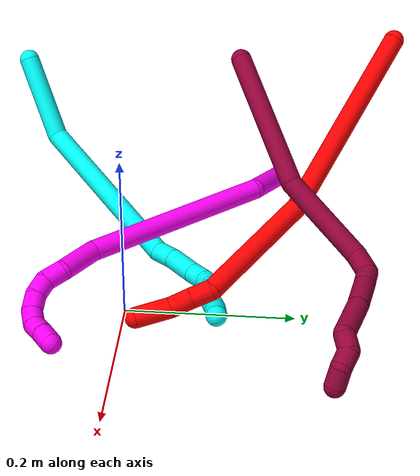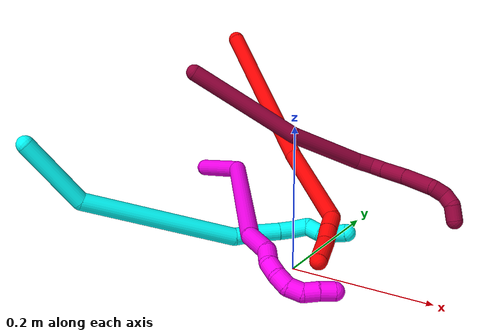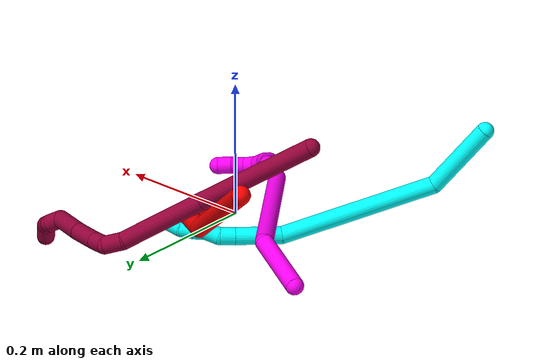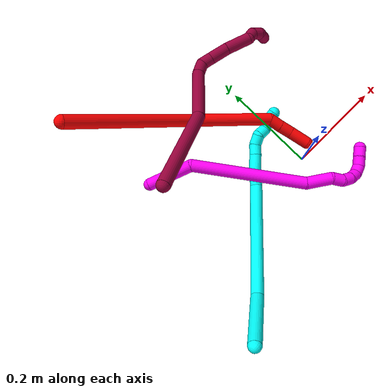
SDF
<sdf version="1.7">
 <world name="default">
  <model name="2">
   <static>0</static>
   <link name="2">
    <collision name="collision-cylinder-e_1_1_4">
     <pose>0.005366 -0.071819 -0.102553 2.53066 0.042832 0.135643</pose>
     <geometry><cylinder><radius>0.0125</radius><length>0.250631</length></cylinder></geometry>
     <surface>
      <friction><ode><mu>1.16</mu><mu2>1.16</mu2><slip1>0</slip1><slip2>0</slip2></ode></friction>
      <contact><ode><kp>1e+06</kp><kd>1</kd><max_vel>0</max_vel><min_depth>0.001</min_depth></ode></contact>
     </surface>
    </collision>
    <visual name="visual-cylinder-e_1_1_4">
     <pose>0.005366 -0.071819 -0.102553 2.53066 0.042832 0.135643</pose>
     <geometry><cylinder><radius>0.0125</radius><length>0.250631</length></cylinder></geometry>
     <material><ambient>1 0 0 1</ambient></material>
    </visual>
    <collision name="collision-cylinder-e_2_4_5">
     <pose>0.008949 -0.165995 -0.279182 2.84848 -0.023033 -0.155726</pose>
     <geometry><cylinder><radius>0.0125</radius><length>0.154792</length></cylinder></geometry>
     <surface>
      <friction><ode><mu>1.16</mu><mu2>1.16</mu2><slip1>0</slip1><slip2>0</slip2></ode></friction>
      <contact><ode><kp>1e+06</kp><kd>1</kd><max_vel>0</max_vel><min_depth>0.001</min_depth></ode></contact>
     </surface>
    </collision>
    <visual name="visual-cylinder-e_2_4_5">
     <pose>0.008949 -0.165995 -0.279182 2.84848 -0.023033 -0.155726</pose>
     <geometry><cylinder><radius>0.0125</radius><length>0.154792</length></cylinder></geometry>
     <material><ambient>1 0 0 1</ambient></material>
    </visual>
    <collision name="collision-cylinder-e_3_5_6">
     <pose>0.013792 -0.189385 -0.364147 3.04694 0.54458 2.80555</pose>
     <geometry><cylinder><radius>0.0125</radius><length>0.025577</length></cylinder></geometry>
     <surface>
      <friction><ode><mu>1.16</mu><mu2>1.16</mu2><slip1>0</slip1><slip2>0</slip2></ode></friction>
      <contact><ode><kp>1e+06</kp><kd>1</kd><max_vel>0</max_vel><min_depth>0.001</min_depth></ode></contact>
     </surface>
    </collision>
    <visual name="visual-cylinder-e_3_5_6">
     <pose>0.013792 -0.189385 -0.364147 3.04694 0.54458 2.80555</pose>
     <geometry><cylinder><radius>0.0125</radius><length>0.025577</length></cylinder></geometry>
     <material><ambient>1 0 0 1</ambient></material>
    </visual>
    <collision name="collision-cylinder-e_4_6_7">
     <pose>0.026655 -0.191814 -0.386681 3.02241 0.488835 2.67197</pose>
     <geometry><cylinder><radius>0.0125</radius><length>0.026566</length></cylinder></geometry>
     <surface>
      <friction><ode><mu>1.16</mu><mu2>1.16</mu2><slip1>0</slip1><slip2>0</slip2></ode></friction>
      <contact><ode><kp>1e+06</kp><kd>1</kd><max_vel>0</max_vel><min_depth>0.001</min_depth></ode></contact>
     </surface>
    </collision>
    <visual name="visual-cylinder-e_4_6_7">
     <pose>0.026655 -0.191814 -0.386681 3.02241 0.488835 2.67197</pose>
     <geometry><cylinder><radius>0.0125</radius><length>0.026566</length></cylinder></geometry>
     <material><ambient>1 0 0 1</ambient></material>
    </visual>
    <collision name="collision-cylinder-e_5_7_2">
     <pose>0.042968 -0.192226 -0.416971 -3.08896 0.494849 -2.93394</pose>
     <geometry><cylinder><radius>0.0125</radius><length>0.042433</length></cylinder></geometry>
     <surface>
      <friction><ode><mu>1.16</mu><mu2>1.16</mu2><slip1>0</slip1><slip2>0</slip2></ode></friction>
      <contact><ode><kp>1e+06</kp><kd>1</kd><max_vel>0</max_vel><min_depth>0.001</min_depth></ode></contact>
     </surface>
    </collision>
    <visual name="visual-cylinder-e_5_7_2">
     <pose>0.042968 -0.192226 -0.416971 -3.08896 0.494849 -2.93394</pose>
     <geometry><cylinder><radius>0.0125</radius><length>0.042433</length></cylinder></geometry>
     <material><ambient>1 0 0 1</ambient></material>
    </visual>
    <collision name="collision-sphere-2">
     <pose>0.053044 -0.191243 -0.435617 0 -0 0</pose>
     <geometry><sphere><radius>0.0125</radius></sphere></geometry>
     <surface>
      <friction><ode><mu>1.16</mu><mu2>1.16</mu2><slip1>0</slip1><slip2>0</slip2></ode></friction>
      <contact><ode><kp>1e+06</kp><kd>1</kd><max_vel>0</max_vel><min_depth>0.001</min_depth></ode></contact>
     </surface>
    </collision>
    <visual name="visual-sphere-2">
     <pose>0.053044 -0.191243 -0.435617 0 -0 0</pose>
     <geometry><sphere><radius>0.0125</radius></sphere></geometry>
     <material><ambient>1 0 0 1</ambient></material>
    </visual>
    <collision name="collision-sphere-7">
     <pose>0.032893 -0.193208 -0.398325 0 -0 0</pose>
     <geometry><sphere><radius>0.0125</radius></sphere></geometry>
     <surface>
      <friction><ode><mu>1.16</mu><mu2>1.16</mu2><slip1>0</slip1><slip2>0</slip2></ode></friction>
      <contact><ode><kp>1e+06</kp><kd>1</kd><max_vel>0</max_vel><min_depth>0.001</min_depth></ode></contact>
     </surface>
    </collision>
    <visual name="visual-sphere-7">
     <pose>0.032893 -0.193208 -0.398325 0 -0 0</pose>
     <geometry><sphere><radius>0.0125</radius></sphere></geometry>
     <material><ambient>1 0 0 1</ambient></material>
    </visual>
    <collision name="collision-sphere-6">
     <pose>0.020417 -0.190419 -0.375037 0 -0 0</pose>
     <geometry><sphere><radius>0.0125</radius></sphere></geometry>
     <surface>
      <friction><ode><mu>1.16</mu><mu2>1.16</mu2><slip1>0</slip1><slip2>0</slip2></ode></friction>
      <contact><ode><kp>1e+06</kp><kd>1</kd><max_vel>0</max_vel><min_depth>0.001</min_depth></ode></contact>
     </surface>
    </collision>
    <visual name="visual-sphere-6">
     <pose>0.020417 -0.190419 -0.375037 0 -0 0</pose>
     <geometry><sphere><radius>0.0125</radius></sphere></geometry>
     <material><ambient>1 0 0 1</ambient></material>
    </visual>
    <collision name="collision-sphere-5">
     <pose>0.007167 -0.188351 -0.353258 0 -0 0</pose>
     <geometry><sphere><radius>0.0125</radius></sphere></geometry>
     <surface>
      <friction><ode><mu>1.16</mu><mu2>1.16</mu2><slip1>0</slip1><slip2>0</slip2></ode></friction>
      <contact><ode><kp>1e+06</kp><kd>1</kd><max_vel>0</max_vel><min_depth>0.001</min_depth></ode></contact>
     </surface>
    </collision>
    <visual name="visual-sphere-5">
     <pose>0.007167 -0.188351 -0.353258 0 -0 0</pose>
     <geometry><sphere><radius>0.0125</radius></sphere></geometry>
     <material><ambient>1 0 0 1</ambient></material>
    </visual>
    <collision name="collision-sphere-1">
     <geometry><sphere><radius>0.0125</radius></sphere></geometry>
     <surface>
      <friction><ode><mu>1.16</mu><mu2>1.16</mu2><slip1>0</slip1><slip2>0</slip2></ode></friction>
      <contact><ode><kp>1e+06</kp><kd>1</kd><max_vel>0</max_vel><min_depth>0.001</min_depth></ode></contact>
     </surface>
    </collision>
    <visual name="visual-sphere-1">
     <geometry><sphere><radius>0.0125</radius></sphere></geometry>
     <material><ambient>1 0 0 1</ambient></material>
    </visual>
    <collision name="collision-sphere-4">
     <pose>0.010732 -0.143639 -0.205107 0 -0 0</pose>
     <geometry><sphere><radius>0.0125</radius></sphere></geometry>
     <surface>
      <friction><ode><mu>1.16</mu><mu2>1.16</mu2><slip1>0</slip1><slip2>0</slip2></ode></friction>
      <contact><ode><kp>1e+06</kp><kd>1</kd><max_vel>0</max_vel><min_depth>0.001</min_depth></ode></contact>
     </surface>
    </collision>
    <visual name="visual-sphere-4">
     <pose>0.010732 -0.143639 -0.205107 0 -0 0</pose>
     <geometry><sphere><radius>0.0125</radius></sphere></geometry>
     <material><ambient>1 0 0 1</ambient></material>
    </visual>
    <inertial>
     <pose>0.011229 -0.123583 -0.212396 0 -0 0</pose>
     <mass>0.5</mass>
     <inertia>
      <ixx>0.001743</ixx>
      <ixy>0</ixy>
      <ixz>0</ixz>
      <iyy>-0.001238</iyy>
      <iyz>0</iyz>
      <izz>0.000759</izz>
     </inertia>
    </inertial>
   </link>
   <pose>-0.283828 0.306736 0.227749 1.51742 0.461636 -2.42924</pose>
  </model>
  <model name="3">
   <static>0</static>
   <link name="3">
    <collision name="collision-cylinder-e_1_1_4">
     <pose>-0.016503 0.016535 -0.048073 -2.81031 -0.313898 1.51597</pose>
     <geometry><cylinder><radius>0.0125</radius><length>0.106898</length></cylinder></geometry>
     <surface>
      <friction><ode><mu>1.16</mu><mu2>1.16</mu2><slip1>0</slip1><slip2>0</slip2></ode></friction>
      <contact><ode><kp>1e+06</kp><kd>1</kd><max_vel>0</max_vel><min_depth>0.001</min_depth></ode></contact>
     </surface>
    </collision>
    <visual name="visual-cylinder-e_1_1_4">
     <pose>-0.016503 0.016535 -0.048073 -2.81031 -0.313898 1.51597</pose>
     <geometry><cylinder><radius>0.0125</radius><length>0.106898</length></cylinder></geometry>
     <material><ambient>0.003922 1 0.996078 1</ambient></material>
    </visual>
    <collision name="collision-cylinder-e_2_4_5">
     <pose>-0.013756 0.097436 -0.185815 -2.51902 0.17267 -0.525558</pose>
     <geometry><cylinder><radius>0.0125</radius><length>0.22409</length></cylinder></geometry>
     <surface>
      <friction><ode><mu>1.16</mu><mu2>1.16</mu2><slip1>0</slip1><slip2>0</slip2></ode></friction>
      <contact><ode><kp>1e+06</kp><kd>1</kd><max_vel>0</max_vel><min_depth>0.001</min_depth></ode></contact>
     </surface>
    </collision>
    <visual name="visual-cylinder-e_2_4_5">
     <pose>-0.013756 0.097436 -0.185815 -2.51902 0.17267 -0.525558</pose>
     <geometry><cylinder><radius>0.0125</radius><length>0.22409</length></cylinder></geometry>
     <material><ambient>0.003922 1 0.996078 1</ambient></material>
    </visual>
    <collision name="collision-cylinder-e_3_5_6">
     <pose>0.011627 0.17106 -0.282894 -2.24568 0.477213 -0.937163</pose>
     <geometry><cylinder><radius>0.0125</radius><length>0.026702</length></cylinder></geometry>
     <surface>
      <friction><ode><mu>1.16</mu><mu2>1.16</mu2><slip1>0</slip1><slip2>0</slip2></ode></friction>
      <contact><ode><kp>1e+06</kp><kd>1</kd><max_vel>0</max_vel><min_depth>0.001</min_depth></ode></contact>
     </surface>
    </collision>
    <visual name="visual-cylinder-e_3_5_6">
     <pose>0.011627 0.17106 -0.282894 -2.24568 0.477213 -0.937163</pose>
     <geometry><cylinder><radius>0.0125</radius><length>0.026702</length></cylinder></geometry>
     <material><ambient>0.003922 1 0.996078 1</ambient></material>
    </visual>
    <collision name="collision-cylinder-e_4_6_7">
     <pose>0.026614 0.19211 -0.302884 -2.38857 0.47444 -1.09768</pose>
     <geometry><cylinder><radius>0.0125</radius><length>0.038765</length></cylinder></geometry>
     <surface>
      <friction><ode><mu>1.16</mu><mu2>1.16</mu2><slip1>0</slip1><slip2>0</slip2></ode></friction>
      <contact><ode><kp>1e+06</kp><kd>1</kd><max_vel>0</max_vel><min_depth>0.001</min_depth></ode></contact>
     </surface>
    </collision>
    <visual name="visual-cylinder-e_4_6_7">
     <pose>0.026614 0.19211 -0.302884 -2.38857 0.47444 -1.09768</pose>
     <geometry><cylinder><radius>0.0125</radius><length>0.038765</length></cylinder></geometry>
     <material><ambient>0.003922 1 0.996078 1</ambient></material>
    </visual>
    <collision name="collision-cylinder-e_5_7_8">
     <pose>0.040617 0.21088 -0.322135 -2.33364 0.48992 -1.05829</pose>
     <geometry><cylinder><radius>0.0125</radius><length>0.021883</length></cylinder></geometry>
     <surface>
      <friction><ode><mu>1.16</mu><mu2>1.16</mu2><slip1>0</slip1><slip2>0</slip2></ode></friction>
      <contact><ode><kp>1e+06</kp><kd>1</kd><max_vel>0</max_vel><min_depth>0.001</min_depth></ode></contact>
     </surface>
    </collision>
    <visual name="visual-cylinder-e_5_7_8">
     <pose>0.040617 0.21088 -0.322135 -2.33364 0.48992 -1.05829</pose>
     <geometry><cylinder><radius>0.0125</radius><length>0.021883</length></cylinder></geometry>
     <material><ambient>0.003922 1 0.996078 1</ambient></material>
    </visual>
    <collision name="collision-cylinder-e_6_8_9">
     <pose>0.053761 0.221195 -0.334929 -2.64269 0.853522 -2.12022</pose>
     <geometry><cylinder><radius>0.0125</radius><length>0.021218</length></cylinder></geometry>
     <surface>
      <friction><ode><mu>1.16</mu><mu2>1.16</mu2><slip1>0</slip1><slip2>0</slip2></ode></friction>
      <contact><ode><kp>1e+06</kp><kd>1</kd><max_vel>0</max_vel><min_depth>0.001</min_depth></ode></contact>
     </surface>
    </collision>
    <visual name="visual-cylinder-e_6_8_9">
     <pose>0.053761 0.221195 -0.334929 -2.64269 0.853522 -2.12022</pose>
     <geometry><cylinder><radius>0.0125</radius><length>0.021218</length></cylinder></geometry>
     <material><ambient>0.003922 1 0.996078 1</ambient></material>
    </visual>
    <collision name="collision-cylinder-e_7_9_10">
     <pose>0.065332 0.223657 -0.350395 3.04822 0.364109 2.64451</pose>
     <geometry><cylinder><radius>0.0125</radius><length>0.020083</length></cylinder></geometry>
     <surface>
      <friction><ode><mu>1.16</mu><mu2>1.16</mu2><slip1>0</slip1><slip2>0</slip2></ode></friction>
      <contact><ode><kp>1e+06</kp><kd>1</kd><max_vel>0</max_vel><min_depth>0.001</min_depth></ode></contact>
     </surface>
    </collision>
    <visual name="visual-cylinder-e_7_9_10">
     <pose>0.065332 0.223657 -0.350395 3.04822 0.364109 2.64451</pose>
     <geometry><cylinder><radius>0.0125</radius><length>0.020083</length></cylinder></geometry>
     <material><ambient>0.003922 1 0.996078 1</ambient></material>
    </visual>
    <collision name="collision-cylinder-e_8_10_11">
     <pose>0.074689 0.225753 -0.367571 -2.7791 0.604039 -2.07817</pose>
     <geometry><cylinder><radius>0.0125</radius><length>0.020358</length></cylinder></geometry>
     <surface>
      <friction><ode><mu>1.16</mu><mu2>1.16</mu2><slip1>0</slip1><slip2>0</slip2></ode></friction>
      <contact><ode><kp>1e+06</kp><kd>1</kd><max_vel>0</max_vel><min_depth>0.001</min_depth></ode></contact>
     </surface>
    </collision>
    <visual name="visual-cylinder-e_8_10_11">
     <pose>0.074689 0.225753 -0.367571 -2.7791 0.604039 -2.07817</pose>
     <geometry><cylinder><radius>0.0125</radius><length>0.020358</length></cylinder></geometry>
     <material><ambient>0.003922 1 0.996078 1</ambient></material>
    </visual>
    <collision name="collision-cylinder-e_9_11_2">
     <pose>0.088096 0.229239 -0.381856 -3.06186 0.867004 -2.96968</pose>
     <geometry><cylinder><radius>0.0125</radius><length>0.020005</length></cylinder></geometry>
     <surface>
      <friction><ode><mu>1.16</mu><mu2>1.16</mu2><slip1>0</slip1><slip2>0</slip2></ode></friction>
      <contact><ode><kp>1e+06</kp><kd>1</kd><max_vel>0</max_vel><min_depth>0.001</min_depth></ode></contact>
     </surface>
    </collision>
    <visual name="visual-cylinder-e_9_11_2">
     <pose>0.088096 0.229239 -0.381856 -3.06186 0.867004 -2.96968</pose>
     <geometry><cylinder><radius>0.0125</radius><length>0.020005</length></cylinder></geometry>
     <material><ambient>0.003922 1 0.996078 1</ambient></material>
    </visual>
    <collision name="collision-sphere-2">
     <pose>0.095722 0.229755 -0.388308 0 -0 0</pose>
     <geometry><sphere><radius>0.0125</radius></sphere></geometry>
     <surface>
      <friction><ode><mu>1.16</mu><mu2>1.16</mu2><slip1>0</slip1><slip2>0</slip2></ode></friction>
      <contact><ode><kp>1e+06</kp><kd>1</kd><max_vel>0</max_vel><min_depth>0.001</min_depth></ode></contact>
     </surface>
    </collision>
    <visual name="visual-sphere-2">
     <pose>0.095722 0.229755 -0.388308 0 -0 0</pose>
     <geometry><sphere><radius>0.0125</radius></sphere></geometry>
     <material><ambient>0.003922 1 0.996078 1</ambient></material>
    </visual>
    <collision name="collision-sphere-11">
     <pose>0.08047 0.228724 -0.375404 0 -0 0</pose>
     <geometry><sphere><radius>0.0125</radius></sphere></geometry>
     <surface>
      <friction><ode><mu>1.16</mu><mu2>1.16</mu2><slip1>0</slip1><slip2>0</slip2></ode></friction>
      <contact><ode><kp>1e+06</kp><kd>1</kd><max_vel>0</max_vel><min_depth>0.001</min_depth></ode></contact>
     </surface>
    </collision>
    <visual name="visual-sphere-11">
     <pose>0.08047 0.228724 -0.375404 0 -0 0</pose>
     <geometry><sphere><radius>0.0125</radius></sphere></geometry>
     <material><ambient>0.003922 1 0.996078 1</ambient></material>
    </visual>
    <collision name="collision-sphere-10">
     <pose>0.068908 0.222782 -0.359737 0 -0 0</pose>
     <geometry><sphere><radius>0.0125</radius></sphere></geometry>
     <surface>
      <friction><ode><mu>1.16</mu><mu2>1.16</mu2><slip1>0</slip1><slip2>0</slip2></ode></friction>
      <contact><ode><kp>1e+06</kp><kd>1</kd><max_vel>0</max_vel><min_depth>0.001</min_depth></ode></contact>
     </surface>
    </collision>
    <visual name="visual-sphere-10">
     <pose>0.068908 0.222782 -0.359737 0 -0 0</pose>
     <geometry><sphere><radius>0.0125</radius></sphere></geometry>
     <material><ambient>0.003922 1 0.996078 1</ambient></material>
    </visual>
    <collision name="collision-sphere-9">
     <pose>0.061756 0.224532 -0.341053 0 -0 0</pose>
     <geometry><sphere><radius>0.0125</radius></sphere></geometry>
     <surface>
      <friction><ode><mu>1.16</mu><mu2>1.16</mu2><slip1>0</slip1><slip2>0</slip2></ode></friction>
      <contact><ode><kp>1e+06</kp><kd>1</kd><max_vel>0</max_vel><min_depth>0.001</min_depth></ode></contact>
     </surface>
    </collision>
    <visual name="visual-sphere-9">
     <pose>0.061756 0.224532 -0.341053 0 -0 0</pose>
     <geometry><sphere><radius>0.0125</radius></sphere></geometry>
     <material><ambient>0.003922 1 0.996078 1</ambient></material>
    </visual>
    <collision name="collision-sphere-4">
     <pose>-0.033007 0.03307 -0.096146 0 -0 0</pose>
     <geometry><sphere><radius>0.0125</radius></sphere></geometry>
     <surface>
      <friction><ode><mu>1.16</mu><mu2>1.16</mu2><slip1>0</slip1><slip2>0</slip2></ode></friction>
      <contact><ode><kp>1e+06</kp><kd>1</kd><max_vel>0</max_vel><min_depth>0.001</min_depth></ode></contact>
     </surface>
    </collision>
    <visual name="visual-sphere-4">
     <pose>-0.033007 0.03307 -0.096146 0 -0 0</pose>
     <geometry><sphere><radius>0.0125</radius></sphere></geometry>
     <material><ambient>0.003922 1 0.996078 1</ambient></material>
    </visual>
    <collision name="collision-sphere-1">
     <geometry><sphere><radius>0.0125</radius></sphere></geometry>
     <surface>
      <friction><ode><mu>1.16</mu><mu2>1.16</mu2><slip1>0</slip1><slip2>0</slip2></ode></friction>
      <contact><ode><kp>1e+06</kp><kd>1</kd><max_vel>0</max_vel><min_depth>0.001</min_depth></ode></contact>
     </surface>
    </collision>
    <visual name="visual-sphere-1">
     <geometry><sphere><radius>0.0125</radius></sphere></geometry>
     <material><ambient>0.003922 1 0.996078 1</ambient></material>
    </visual>
    <collision name="collision-sphere-8">
     <pose>0.045766 0.217859 -0.328806 0 -0 0</pose>
     <geometry><sphere><radius>0.0125</radius></sphere></geometry>
     <surface>
      <friction><ode><mu>1.16</mu><mu2>1.16</mu2><slip1>0</slip1><slip2>0</slip2></ode></friction>
      <contact><ode><kp>1e+06</kp><kd>1</kd><max_vel>0</max_vel><min_depth>0.001</min_depth></ode></contact>
     </surface>
    </collision>
    <visual name="visual-sphere-8">
     <pose>0.045766 0.217859 -0.328806 0 -0 0</pose>
     <geometry><sphere><radius>0.0125</radius></sphere></geometry>
     <material><ambient>0.003922 1 0.996078 1</ambient></material>
    </visual>
    <collision name="collision-sphere-5">
     <pose>0.005495 0.161801 -0.275484 0 -0 0</pose>
     <geometry><sphere><radius>0.0125</radius></sphere></geometry>
     <surface>
      <friction><ode><mu>1.16</mu><mu2>1.16</mu2><slip1>0</slip1><slip2>0</slip2></ode></friction>
      <contact><ode><kp>1e+06</kp><kd>1</kd><max_vel>0</max_vel><min_depth>0.001</min_depth></ode></contact>
     </surface>
    </collision>
    <visual name="visual-sphere-5">
     <pose>0.005495 0.161801 -0.275484 0 -0 0</pose>
     <geometry><sphere><radius>0.0125</radius></sphere></geometry>
     <material><ambient>0.003922 1 0.996078 1</ambient></material>
    </visual>
    <collision name="collision-sphere-6">
     <pose>0.017759 0.18032 -0.290304 0 -0 0</pose>
     <geometry><sphere><radius>0.0125</radius></sphere></geometry>
     <surface>
      <friction><ode><mu>1.16</mu><mu2>1.16</mu2><slip1>0</slip1><slip2>0</slip2></ode></friction>
      <contact><ode><kp>1e+06</kp><kd>1</kd><max_vel>0</max_vel><min_depth>0.001</min_depth></ode></contact>
     </surface>
    </collision>
    <visual name="visual-sphere-6">
     <pose>0.017759 0.18032 -0.290304 0 -0 0</pose>
     <geometry><sphere><radius>0.0125</radius></sphere></geometry>
     <material><ambient>0.003922 1 0.996078 1</ambient></material>
    </visual>
    <collision name="collision-sphere-7">
     <pose>0.035469 0.203901 -0.315463 0 -0 0</pose>
     <geometry><sphere><radius>0.0125</radius></sphere></geometry>
     <surface>
      <friction><ode><mu>1.16</mu><mu2>1.16</mu2><slip1>0</slip1><slip2>0</slip2></ode></friction>
      <contact><ode><kp>1e+06</kp><kd>1</kd><max_vel>0</max_vel><min_depth>0.001</min_depth></ode></contact>
     </surface>
    </collision>
    <visual name="visual-sphere-7">
     <pose>0.035469 0.203901 -0.315463 0 -0 0</pose>
     <geometry><sphere><radius>0.0125</radius></sphere></geometry>
     <material><ambient>0.003922 1 0.996078 1</ambient></material>
    </visual>
    <inertial>
     <pose>0.00624 0.117196 -0.204775 0 -0 0</pose>
     <mass>0.5</mass>
     <inertia>
      <ixx>0.000444</ixx>
      <ixy>0</ixy>
      <ixz>0</ixz>
      <iyy>-0.000967</iyy>
      <iyz>0</iyz>
      <izz>-0.000753</izz>
     </inertia>
    </inertial>
   </link>
   <pose>-0.314674 -0.162699 0.167213 0.056884 -0.924471 0.061514</pose>
  </model>
  <model name="8">
   <static>0</static>
   <link name="8">
    <collision name="collision-cylinder-e_1_1_4">
     <pose>0.011065 -0.016835 -0.086422 2.94921 0.125019 1.15088</pose>
     <geometry><cylinder><radius>0.0125</radius><length>0.177477</length></cylinder></geometry>
     <surface>
      <friction><ode><mu>1.16</mu><mu2>1.16</mu2><slip1>0</slip1><slip2>0</slip2></ode></friction>
      <contact><ode><kp>1e+06</kp><kd>1</kd><max_vel>0</max_vel><min_depth>0.001</min_depth></ode></contact>
     </surface>
    </collision>
    <visual name="visual-cylinder-e_1_1_4">
     <pose>0.011065 -0.016835 -0.086422 2.94921 0.125019 1.15088</pose>
     <geometry><cylinder><radius>0.0125</radius><length>0.177477</length></cylinder></geometry>
     <material><ambient>0.584314 0 0.227451 1</ambient></material>
    </visual>
    <collision name="collision-cylinder-e_2_4_5">
     <pose>0.047684 -0.038384 -0.225415 3.05214 0.450871 2.75612</pose>
     <geometry><cylinder><radius>0.0125</radius><length>0.117287</length></cylinder></geometry>
     <surface>
      <friction><ode><mu>1.16</mu><mu2>1.16</mu2><slip1>0</slip1><slip2>0</slip2></ode></friction>
      <contact><ode><kp>1e+06</kp><kd>1</kd><max_vel>0</max_vel><min_depth>0.001</min_depth></ode></contact>
     </surface>
    </collision>
    <visual name="visual-cylinder-e_2_4_5">
     <pose>0.047684 -0.038384 -0.225415 3.05214 0.450871 2.75612</pose>
     <geometry><cylinder><radius>0.0125</radius><length>0.117287</length></cylinder></geometry>
     <material><ambient>0.584314 0 0.227451 1</ambient></material>
    </visual>
    <collision name="collision-cylinder-e_3_5_6">
     <pose>0.077006 -0.047891 -0.289955 2.76079 0.284408 1.2778</pose>
     <geometry><cylinder><radius>0.0125</radius><length>0.026861</length></cylinder></geometry>
     <surface>
      <friction><ode><mu>1.16</mu><mu2>1.16</mu2><slip1>0</slip1><slip2>0</slip2></ode></friction>
      <contact><ode><kp>1e+06</kp><kd>1</kd><max_vel>0</max_vel><min_depth>0.001</min_depth></ode></contact>
     </surface>
    </collision>
    <visual name="visual-cylinder-e_3_5_6">
     <pose>0.077006 -0.047891 -0.289955 2.76079 0.284408 1.2778</pose>
     <geometry><cylinder><radius>0.0125</radius><length>0.026861</length></cylinder></geometry>
     <material><ambient>0.584314 0 0.227451 1</ambient></material>
    </visual>
    <collision name="collision-cylinder-e_4_6_7">
     <pose>0.077955 -0.060882 -0.308941 2.2787 -0.255575 -0.544339</pose>
     <geometry><cylinder><radius>0.0125</radius><length>0.022312</length></cylinder></geometry>
     <surface>
      <friction><ode><mu>1.16</mu><mu2>1.16</mu2><slip1>0</slip1><slip2>0</slip2></ode></friction>
      <contact><ode><kp>1e+06</kp><kd>1</kd><max_vel>0</max_vel><min_depth>0.001</min_depth></ode></contact>
     </surface>
    </collision>
    <visual name="visual-cylinder-e_4_6_7">
     <pose>0.077955 -0.060882 -0.308941 2.2787 -0.255575 -0.544339</pose>
     <geometry><cylinder><radius>0.0125</radius><length>0.022312</length></cylinder></geometry>
     <material><ambient>0.584314 0 0.227451 1</ambient></material>
    </visual>
    <collision name="collision-cylinder-e_5_7_8">
     <pose>0.069905 -0.084257 -0.32756 2.22353 -0.267229 -0.531078</pose>
     <geometry><cylinder><radius>0.0125</radius><length>0.039609</length></cylinder></geometry>
     <surface>
      <friction><ode><mu>1.16</mu><mu2>1.16</mu2><slip1>0</slip1><slip2>0</slip2></ode></friction>
      <contact><ode><kp>1e+06</kp><kd>1</kd><max_vel>0</max_vel><min_depth>0.001</min_depth></ode></contact>
     </surface>
    </collision>
    <visual name="visual-cylinder-e_5_7_8">
     <pose>0.069905 -0.084257 -0.32756 2.22353 -0.267229 -0.531078</pose>
     <geometry><cylinder><radius>0.0125</radius><length>0.039609</length></cylinder></geometry>
     <material><ambient>0.584314 0 0.227451 1</ambient></material>
    </visual>
    <collision name="collision-cylinder-e_6_8_9">
     <pose>0.055308 -0.11918 -0.353446 2.197 -0.366936 -0.69681</pose>
     <geometry><cylinder><radius>0.0125</radius><length>0.052222</length></cylinder></geometry>
     <surface>
      <friction><ode><mu>1.16</mu><mu2>1.16</mu2><slip1>0</slip1><slip2>0</slip2></ode></friction>
      <contact><ode><kp>1e+06</kp><kd>1</kd><max_vel>0</max_vel><min_depth>0.001</min_depth></ode></contact>
     </surface>
    </collision>
    <visual name="visual-cylinder-e_6_8_9">
     <pose>0.055308 -0.11918 -0.353446 2.197 -0.366936 -0.69681</pose>
     <geometry><cylinder><radius>0.0125</radius><length>0.052222</length></cylinder></geometry>
     <material><ambient>0.584314 0 0.227451 1</ambient></material>
    </visual>
    <collision name="collision-cylinder-e_7_9_10">
     <pose>0.046194 -0.141987 -0.377631 2.84188 0.024508 0.161975</pose>
     <geometry><cylinder><radius>0.0125</radius><length>0.020731</length></cylinder></geometry>
     <surface>
      <friction><ode><mu>1.16</mu><mu2>1.16</mu2><slip1>0</slip1><slip2>0</slip2></ode></friction>
      <contact><ode><kp>1e+06</kp><kd>1</kd><max_vel>0</max_vel><min_depth>0.001</min_depth></ode></contact>
     </surface>
    </collision>
    <visual name="visual-cylinder-e_7_9_10">
     <pose>0.046194 -0.141987 -0.377631 2.84188 0.024508 0.161975</pose>
     <geometry><cylinder><radius>0.0125</radius><length>0.020731</length></cylinder></geometry>
     <material><ambient>0.584314 0 0.227451 1</ambient></material>
    </visual>
    <collision name="collision-cylinder-e_8_10_11">
     <pose>0.040426 -0.148432 -0.394812 2.70629 -0.643553 -1.9701</pose>
     <geometry><cylinder><radius>0.0125</radius><length>0.020073</length></cylinder></geometry>
     <surface>
      <friction><ode><mu>1.16</mu><mu2>1.16</mu2><slip1>0</slip1><slip2>0</slip2></ode></friction>
      <contact><ode><kp>1e+06</kp><kd>1</kd><max_vel>0</max_vel><min_depth>0.001</min_depth></ode></contact>
     </surface>
    </collision>
    <visual name="visual-cylinder-e_8_10_11">
     <pose>0.040426 -0.148432 -0.394812 2.70629 -0.643553 -1.9701</pose>
     <geometry><cylinder><radius>0.0125</radius><length>0.020073</length></cylinder></geometry>
     <material><ambient>0.584314 0 0.227451 1</ambient></material>
    </visual>
    <collision name="collision-cylinder-e_9_11_2">
     <pose>0.027682 -0.148542 -0.411109 -2.79305 -0.611129 2.12348</pose>
     <geometry><cylinder><radius>0.0125</radius><length>0.023428</length></cylinder></geometry>
     <surface>
      <friction><ode><mu>1.16</mu><mu2>1.16</mu2><slip1>0</slip1><slip2>0</slip2></ode></friction>
      <contact><ode><kp>1e+06</kp><kd>1</kd><max_vel>0</max_vel><min_depth>0.001</min_depth></ode></contact>
     </surface>
    </collision>
    <visual name="visual-cylinder-e_9_11_2">
     <pose>0.027682 -0.148542 -0.411109 -2.79305 -0.611129 2.12348</pose>
     <geometry><cylinder><radius>0.0125</radius><length>0.023428</length></cylinder></geometry>
     <material><ambient>0.584314 0 0.227451 1</ambient></material>
    </visual>
    <collision name="collision-sphere-2">
     <pose>0.020961 -0.145265 -0.420126 0 -0 0</pose>
     <geometry><sphere><radius>0.0125</radius></sphere></geometry>
     <surface>
      <friction><ode><mu>1.16</mu><mu2>1.16</mu2><slip1>0</slip1><slip2>0</slip2></ode></friction>
      <contact><ode><kp>1e+06</kp><kd>1</kd><max_vel>0</max_vel><min_depth>0.001</min_depth></ode></contact>
     </surface>
    </collision>
    <visual name="visual-sphere-2">
     <pose>0.020961 -0.145265 -0.420126 0 -0 0</pose>
     <geometry><sphere><radius>0.0125</radius></sphere></geometry>
     <material><ambient>0.584314 0 0.227451 1</ambient></material>
    </visual>
    <collision name="collision-sphere-11">
     <pose>0.034404 -0.151818 -0.402092 0 -0 0</pose>
     <geometry><sphere><radius>0.0125</radius></sphere></geometry>
     <surface>
      <friction><ode><mu>1.16</mu><mu2>1.16</mu2><slip1>0</slip1><slip2>0</slip2></ode></friction>
      <contact><ode><kp>1e+06</kp><kd>1</kd><max_vel>0</max_vel><min_depth>0.001</min_depth></ode></contact>
     </surface>
    </collision>
    <visual name="visual-sphere-11">
     <pose>0.034404 -0.151818 -0.402092 0 -0 0</pose>
     <geometry><sphere><radius>0.0125</radius></sphere></geometry>
     <material><ambient>0.584314 0 0.227451 1</ambient></material>
    </visual>
    <collision name="collision-sphere-10">
     <pose>0.046448 -0.145047 -0.387531 0 -0 0</pose>
     <geometry><sphere><radius>0.0125</radius></sphere></geometry>
     <surface>
      <friction><ode><mu>1.16</mu><mu2>1.16</mu2><slip1>0</slip1><slip2>0</slip2></ode></friction>
      <contact><ode><kp>1e+06</kp><kd>1</kd><max_vel>0</max_vel><min_depth>0.001</min_depth></ode></contact>
     </surface>
    </collision>
    <visual name="visual-sphere-10">
     <pose>0.046448 -0.145047 -0.387531 0 -0 0</pose>
     <geometry><sphere><radius>0.0125</radius></sphere></geometry>
     <material><ambient>0.584314 0 0.227451 1</ambient></material>
    </visual>
    <collision name="collision-sphere-9">
     <pose>0.04594 -0.138928 -0.36773 0 -0 0</pose>
     <geometry><sphere><radius>0.0125</radius></sphere></geometry>
     <surface>
      <friction><ode><mu>1.16</mu><mu2>1.16</mu2><slip1>0</slip1><slip2>0</slip2></ode></friction>
      <contact><ode><kp>1e+06</kp><kd>1</kd><max_vel>0</max_vel><min_depth>0.001</min_depth></ode></contact>
     </surface>
    </collision>
    <visual name="visual-sphere-9">
     <pose>0.04594 -0.138928 -0.36773 0 -0 0</pose>
     <geometry><sphere><radius>0.0125</radius></sphere></geometry>
     <material><ambient>0.584314 0 0.227451 1</ambient></material>
    </visual>
    <collision name="collision-sphere-4">
     <pose>0.02213 -0.033669 -0.172843 0 -0 0</pose>
     <geometry><sphere><radius>0.0125</radius></sphere></geometry>
     <surface>
      <friction><ode><mu>1.16</mu><mu2>1.16</mu2><slip1>0</slip1><slip2>0</slip2></ode></friction>
      <contact><ode><kp>1e+06</kp><kd>1</kd><max_vel>0</max_vel><min_depth>0.001</min_depth></ode></contact>
     </surface>
    </collision>
    <visual name="visual-sphere-4">
     <pose>0.02213 -0.033669 -0.172843 0 -0 0</pose>
     <geometry><sphere><radius>0.0125</radius></sphere></geometry>
     <material><ambient>0.584314 0 0.227451 1</ambient></material>
    </visual>
    <collision name="collision-sphere-1">
     <geometry><sphere><radius>0.0125</radius></sphere></geometry>
     <surface>
      <friction><ode><mu>1.16</mu><mu2>1.16</mu2><slip1>0</slip1><slip2>0</slip2></ode></friction>
      <contact><ode><kp>1e+06</kp><kd>1</kd><max_vel>0</max_vel><min_depth>0.001</min_depth></ode></contact>
     </surface>
    </collision>
    <visual name="visual-sphere-1">
     <geometry><sphere><radius>0.0125</radius></sphere></geometry>
     <material><ambient>0.584314 0 0.227451 1</ambient></material>
    </visual>
    <collision name="collision-sphere-8">
     <pose>0.064675 -0.099431 -0.339162 0 -0 0</pose>
     <geometry><sphere><radius>0.0125</radius></sphere></geometry>
     <surface>
      <friction><ode><mu>1.16</mu><mu2>1.16</mu2><slip1>0</slip1><slip2>0</slip2></ode></friction>
      <contact><ode><kp>1e+06</kp><kd>1</kd><max_vel>0</max_vel><min_depth>0.001</min_depth></ode></contact>
     </surface>
    </collision>
    <visual name="visual-sphere-8">
     <pose>0.064675 -0.099431 -0.339162 0 -0 0</pose>
     <geometry><sphere><radius>0.0125</radius></sphere></geometry>
     <material><ambient>0.584314 0 0.227451 1</ambient></material>
    </visual>
    <collision name="collision-sphere-5">
     <pose>0.073238 -0.0431 -0.277987 0 -0 0</pose>
     <geometry><sphere><radius>0.0125</radius></sphere></geometry>
     <surface>
      <friction><ode><mu>1.16</mu><mu2>1.16</mu2><slip1>0</slip1><slip2>0</slip2></ode></friction>
      <contact><ode><kp>1e+06</kp><kd>1</kd><max_vel>0</max_vel><min_depth>0.001</min_depth></ode></contact>
     </surface>
    </collision>
    <visual name="visual-sphere-5">
     <pose>0.073238 -0.0431 -0.277987 0 -0 0</pose>
     <geometry><sphere><radius>0.0125</radius></sphere></geometry>
     <material><ambient>0.584314 0 0.227451 1</ambient></material>
    </visual>
    <collision name="collision-sphere-6">
     <pose>0.080775 -0.052682 -0.301922 0 -0 0</pose>
     <geometry><sphere><radius>0.0125</radius></sphere></geometry>
     <surface>
      <friction><ode><mu>1.16</mu><mu2>1.16</mu2><slip1>0</slip1><slip2>0</slip2></ode></friction>
      <contact><ode><kp>1e+06</kp><kd>1</kd><max_vel>0</max_vel><min_depth>0.001</min_depth></ode></contact>
     </surface>
    </collision>
    <visual name="visual-sphere-6">
     <pose>0.080775 -0.052682 -0.301922 0 -0 0</pose>
     <geometry><sphere><radius>0.0125</radius></sphere></geometry>
     <material><ambient>0.584314 0 0.227451 1</ambient></material>
    </visual>
    <collision name="collision-sphere-7">
     <pose>0.075134 -0.069082 -0.315959 0 -0 0</pose>
     <geometry><sphere><radius>0.0125</radius></sphere></geometry>
     <surface>
      <friction><ode><mu>1.16</mu><mu2>1.16</mu2><slip1>0</slip1><slip2>0</slip2></ode></friction>
      <contact><ode><kp>1e+06</kp><kd>1</kd><max_vel>0</max_vel><min_depth>0.001</min_depth></ode></contact>
     </surface>
    </collision>
    <visual name="visual-sphere-7">
     <pose>0.075134 -0.069082 -0.315959 0 -0 0</pose>
     <geometry><sphere><radius>0.0125</radius></sphere></geometry>
     <material><ambient>0.584314 0 0.227451 1</ambient></material>
    </visual>
    <inertial>
     <pose>0.038878 -0.058198 -0.22655 0 -0 0</pose>
     <mass>0.5</mass>
     <inertia>
      <ixx>0.000561</ixx>
      <ixy>0</ixy>
      <ixz>0</ixz>
      <iyy>0.000399</iyy>
      <iyz>0</iyz>
      <izz>-2.5e-05</izz>
     </inertia>
    </inertial>
   </link>
   <pose>-0.239225 0.119486 0.215475 -0.708072 -0.351262 1.65138</pose>
  </model>
  <model name="10">
   <static>0</static>
   <link name="10">
    <collision name="collision-cylinder-e_1_1_4">
     <pose>0.031954 -0.026626 0.021978 0.880743 0.746748 0.365101</pose>
     <geometry><cylinder><radius>0.0125</radius><length>0.094086</length></cylinder></geometry>
     <surface>
      <friction><ode><mu>1.16</mu><mu2>1.16</mu2><slip1>0</slip1><slip2>0</slip2></ode></friction>
      <contact><ode><kp>1e+06</kp><kd>1</kd><max_vel>0</max_vel><min_depth>0.001</min_depth></ode></contact>
     </surface>
    </collision>
    <visual name="visual-cylinder-e_1_1_4">
     <pose>0.031954 -0.026626 0.021978 0.880743 0.746748 0.365101</pose>
     <geometry><cylinder><radius>0.0125</radius><length>0.094086</length></cylinder></geometry>
     <material><ambient>1 0 0.964706 1</ambient></material>
    </visual>
    <collision name="collision-cylinder-e_2_4_5">
     <pose>0.081368 -0.150729 0.102165 1.03247 0.152585 0.086717</pose>
     <geometry><cylinder><radius>0.0125</radius><length>0.229739</length></cylinder></geometry>
     <surface>
      <friction><ode><mu>1.16</mu><mu2>1.16</mu2><slip1>0</slip1><slip2>0</slip2></ode></friction>
      <contact><ode><kp>1e+06</kp><kd>1</kd><max_vel>0</max_vel><min_depth>0.001</min_depth></ode></contact>
     </surface>
    </collision>
    <visual name="visual-cylinder-e_2_4_5">
     <pose>0.081368 -0.150729 0.102165 1.03247 0.152585 0.086717</pose>
     <geometry><cylinder><radius>0.0125</radius><length>0.229739</length></cylinder></geometry>
     <material><ambient>1 0 0.964706 1</ambient></material>
    </visual>
    <collision name="collision-cylinder-e_3_5_6">
     <pose>0.110937 -0.268485 0.170494 1.10793 0.490766 0.307377</pose>
     <geometry><cylinder><radius>0.0125</radius><length>0.051391</length></cylinder></geometry>
     <surface>
      <friction><ode><mu>1.16</mu><mu2>1.16</mu2><slip1>0</slip1><slip2>0</slip2></ode></friction>
      <contact><ode><kp>1e+06</kp><kd>1</kd><max_vel>0</max_vel><min_depth>0.001</min_depth></ode></contact>
     </surface>
    </collision>
    <visual name="visual-cylinder-e_3_5_6">
     <pose>0.110937 -0.268485 0.170494 1.10793 0.490766 0.307377</pose>
     <geometry><cylinder><radius>0.0125</radius><length>0.051391</length></cylinder></geometry>
     <material><ambient>1 0 0.964706 1</ambient></material>
    </visual>
    <collision name="collision-cylinder-e_4_6_7">
     <pose>0.123871 -0.300058 0.184632 1.22893 0.068554 0.04838</pose>
     <geometry><cylinder><radius>0.0125</radius><length>0.024035</length></cylinder></geometry>
     <surface>
      <friction><ode><mu>1.16</mu><mu2>1.16</mu2><slip1>0</slip1><slip2>0</slip2></ode></friction>
      <contact><ode><kp>1e+06</kp><kd>1</kd><max_vel>0</max_vel><min_depth>0.001</min_depth></ode></contact>
     </surface>
    </collision>
    <visual name="visual-cylinder-e_4_6_7">
     <pose>0.123871 -0.300058 0.184632 1.22893 0.068554 0.04838</pose>
     <geometry><cylinder><radius>0.0125</radius><length>0.024035</length></cylinder></geometry>
     <material><ambient>1 0 0.964706 1</ambient></material>
    </visual>
    <collision name="collision-cylinder-e_5_7_8">
     <pose>0.128626 -0.320849 0.188581 1.57819 0.392554 0.395392</pose>
     <geometry><cylinder><radius>0.0125</radius><length>0.020556</length></cylinder></geometry>
     <surface>
      <friction><ode><mu>1.16</mu><mu2>1.16</mu2><slip1>0</slip1><slip2>0</slip2></ode></friction>
      <contact><ode><kp>1e+06</kp><kd>1</kd><max_vel>0</max_vel><min_depth>0.001</min_depth></ode></contact>
     </surface>
    </collision>
    <visual name="visual-cylinder-e_5_7_8">
     <pose>0.128626 -0.320849 0.188581 1.57819 0.392554 0.395392</pose>
     <geometry><cylinder><radius>0.0125</radius><length>0.020556</length></cylinder></geometry>
     <material><ambient>1 0 0.964706 1</ambient></material>
    </visual>
    <collision name="collision-cylinder-e_6_8_9">
     <pose>0.137458 -0.338576 0.185378 1.93452 0.507717 0.719967</pose>
     <geometry><cylinder><radius>0.0125</radius><length>0.020157</length></cylinder></geometry>
     <surface>
      <friction><ode><mu>1.16</mu><mu2>1.16</mu2><slip1>0</slip1><slip2>0</slip2></ode></friction>
      <contact><ode><kp>1e+06</kp><kd>1</kd><max_vel>0</max_vel><min_depth>0.001</min_depth></ode></contact>
     </surface>
    </collision>
    <visual name="visual-cylinder-e_6_8_9">
     <pose>0.137458 -0.338576 0.185378 1.93452 0.507717 0.719967</pose>
     <geometry><cylinder><radius>0.0125</radius><length>0.020157</length></cylinder></geometry>
     <material><ambient>1 0 0.964706 1</ambient></material>
    </visual>
    <collision name="collision-cylinder-e_7_9_10">
     <pose>0.150352 -0.351545 0.178524 2.23653 0.925076 1.59605</pose>
     <geometry><cylinder><radius>0.0125</radius><length>0.020019</length></cylinder></geometry>
     <surface>
      <friction><ode><mu>1.16</mu><mu2>1.16</mu2><slip1>0</slip1><slip2>0</slip2></ode></friction>
      <contact><ode><kp>1e+06</kp><kd>1</kd><max_vel>0</max_vel><min_depth>0.001</min_depth></ode></contact>
     </surface>
    </collision>
    <visual name="visual-cylinder-e_7_9_10">
     <pose>0.150352 -0.351545 0.178524 2.23653 0.925076 1.59605</pose>
     <geometry><cylinder><radius>0.0125</radius><length>0.020019</length></cylinder></geometry>
     <material><ambient>1 0 0.964706 1</ambient></material>
    </visual>
    <collision name="collision-cylinder-e_8_10_11">
     <pose>0.167747 -0.35623 0.171382 -3.12649 1.22167 -3.12002</pose>
     <geometry><cylinder><radius>0.0125</radius><length>0.020007</length></cylinder></geometry>
     <surface>
      <friction><ode><mu>1.16</mu><mu2>1.16</mu2><slip1>0</slip1><slip2>0</slip2></ode></friction>
      <contact><ode><kp>1e+06</kp><kd>1</kd><max_vel>0</max_vel><min_depth>0.001</min_depth></ode></contact>
     </surface>
    </collision>
    <visual name="visual-cylinder-e_8_10_11">
     <pose>0.167747 -0.35623 0.171382 -3.12649 1.22167 -3.12002</pose>
     <geometry><cylinder><radius>0.0125</radius><length>0.020007</length></cylinder></geometry>
     <material><ambient>1 0 0.964706 1</ambient></material>
    </visual>
    <collision name="collision-cylinder-e_9_11_2">
     <pose>0.18619 -0.356815 0.163729 2.99243 1.12884 2.90665</pose>
     <geometry><cylinder><radius>0.0125</radius><length>0.02001</length></cylinder></geometry>
     <surface>
      <friction><ode><mu>1.16</mu><mu2>1.16</mu2><slip1>0</slip1><slip2>0</slip2></ode></friction>
      <contact><ode><kp>1e+06</kp><kd>1</kd><max_vel>0</max_vel><min_depth>0.001</min_depth></ode></contact>
     </surface>
    </collision>
    <visual name="visual-cylinder-e_9_11_2">
     <pose>0.18619 -0.356815 0.163729 2.99243 1.12884 2.90665</pose>
     <geometry><cylinder><radius>0.0125</radius><length>0.02001</length></cylinder></geometry>
     <material><ambient>1 0 0.964706 1</ambient></material>
    </visual>
    <collision name="collision-sphere-2">
     <pose>0.195234 -0.35745 0.159497 0 -0 0</pose>
     <geometry><sphere><radius>0.0125</radius></sphere></geometry>
     <surface>
      <friction><ode><mu>1.16</mu><mu2>1.16</mu2><slip1>0</slip1><slip2>0</slip2></ode></friction>
      <contact><ode><kp>1e+06</kp><kd>1</kd><max_vel>0</max_vel><min_depth>0.001</min_depth></ode></contact>
     </surface>
    </collision>
    <visual name="visual-sphere-2">
     <pose>0.195234 -0.35745 0.159497 0 -0 0</pose>
     <geometry><sphere><radius>0.0125</radius></sphere></geometry>
     <material><ambient>1 0 0.964706 1</ambient></material>
    </visual>
    <collision name="collision-sphere-11">
     <pose>0.177147 -0.356179 0.16796 0 -0 0</pose>
     <geometry><sphere><radius>0.0125</radius></sphere></geometry>
     <surface>
      <friction><ode><mu>1.16</mu><mu2>1.16</mu2><slip1>0</slip1><slip2>0</slip2></ode></friction>
      <contact><ode><kp>1e+06</kp><kd>1</kd><max_vel>0</max_vel><min_depth>0.001</min_depth></ode></contact>
     </surface>
    </collision>
    <visual name="visual-sphere-11">
     <pose>0.177147 -0.356179 0.16796 0 -0 0</pose>
     <geometry><sphere><radius>0.0125</radius></sphere></geometry>
     <material><ambient>1 0 0.964706 1</ambient></material>
    </visual>
    <collision name="collision-sphere-10">
     <pose>0.158346 -0.356282 0.174804 0 -0 0</pose>
     <geometry><sphere><radius>0.0125</radius></sphere></geometry>
     <surface>
      <friction><ode><mu>1.16</mu><mu2>1.16</mu2><slip1>0</slip1><slip2>0</slip2></ode></friction>
      <contact><ode><kp>1e+06</kp><kd>1</kd><max_vel>0</max_vel><min_depth>0.001</min_depth></ode></contact>
     </surface>
    </collision>
    <visual name="visual-sphere-10">
     <pose>0.158346 -0.356282 0.174804 0 -0 0</pose>
     <geometry><sphere><radius>0.0125</radius></sphere></geometry>
     <material><ambient>1 0 0.964706 1</ambient></material>
    </visual>
    <collision name="collision-sphere-9">
     <pose>0.142358 -0.346807 0.182244 0 -0 0</pose>
     <geometry><sphere><radius>0.0125</radius></sphere></geometry>
     <surface>
      <friction><ode><mu>1.16</mu><mu2>1.16</mu2><slip1>0</slip1><slip2>0</slip2></ode></friction>
      <contact><ode><kp>1e+06</kp><kd>1</kd><max_vel>0</max_vel><min_depth>0.001</min_depth></ode></contact>
     </surface>
    </collision>
    <visual name="visual-sphere-9">
     <pose>0.142358 -0.346807 0.182244 0 -0 0</pose>
     <geometry><sphere><radius>0.0125</radius></sphere></geometry>
     <material><ambient>1 0 0.964706 1</ambient></material>
    </visual>
    <collision name="collision-sphere-4">
     <pose>0.063908 -0.053252 0.043955 0 -0 0</pose>
     <geometry><sphere><radius>0.0125</radius></sphere></geometry>
     <surface>
      <friction><ode><mu>1.16</mu><mu2>1.16</mu2><slip1>0</slip1><slip2>0</slip2></ode></friction>
      <contact><ode><kp>1e+06</kp><kd>1</kd><max_vel>0</max_vel><min_depth>0.001</min_depth></ode></contact>
     </surface>
    </collision>
    <visual name="visual-sphere-4">
     <pose>0.063908 -0.053252 0.043955 0 -0 0</pose>
     <geometry><sphere><radius>0.0125</radius></sphere></geometry>
     <material><ambient>1 0 0.964706 1</ambient></material>
    </visual>
    <collision name="collision-sphere-1">
     <geometry><sphere><radius>0.0125</radius></sphere></geometry>
     <surface>
      <friction><ode><mu>1.16</mu><mu2>1.16</mu2><slip1>0</slip1><slip2>0</slip2></ode></friction>
      <contact><ode><kp>1e+06</kp><kd>1</kd><max_vel>0</max_vel><min_depth>0.001</min_depth></ode></contact>
     </surface>
    </collision>
    <visual name="visual-sphere-1">
     <geometry><sphere><radius>0.0125</radius></sphere></geometry>
     <material><ambient>1 0 0.964706 1</ambient></material>
    </visual>
    <collision name="collision-sphere-8">
     <pose>0.132558 -0.330345 0.188511 0 -0 0</pose>
     <geometry><sphere><radius>0.0125</radius></sphere></geometry>
     <surface>
      <friction><ode><mu>1.16</mu><mu2>1.16</mu2><slip1>0</slip1><slip2>0</slip2></ode></friction>
      <contact><ode><kp>1e+06</kp><kd>1</kd><max_vel>0</max_vel><min_depth>0.001</min_depth></ode></contact>
     </surface>
    </collision>
    <visual name="visual-sphere-8">
     <pose>0.132558 -0.330345 0.188511 0 -0 0</pose>
     <geometry><sphere><radius>0.0125</radius></sphere></geometry>
     <material><ambient>1 0 0.964706 1</ambient></material>
    </visual>
    <collision name="collision-sphere-5">
     <pose>0.098827 -0.248207 0.160374 0 -0 0</pose>
     <geometry><sphere><radius>0.0125</radius></sphere></geometry>
     <surface>
      <friction><ode><mu>1.16</mu><mu2>1.16</mu2><slip1>0</slip1><slip2>0</slip2></ode></friction>
      <contact><ode><kp>1e+06</kp><kd>1</kd><max_vel>0</max_vel><min_depth>0.001</min_depth></ode></contact>
     </surface>
    </collision>
    <visual name="visual-sphere-5">
     <pose>0.098827 -0.248207 0.160374 0 -0 0</pose>
     <geometry><sphere><radius>0.0125</radius></sphere></geometry>
     <material><ambient>1 0 0.964706 1</ambient></material>
    </visual>
    <collision name="collision-sphere-6">
     <pose>0.123048 -0.288763 0.180613 0 -0 0</pose>
     <geometry><sphere><radius>0.0125</radius></sphere></geometry>
     <surface>
      <friction><ode><mu>1.16</mu><mu2>1.16</mu2><slip1>0</slip1><slip2>0</slip2></ode></friction>
      <contact><ode><kp>1e+06</kp><kd>1</kd><max_vel>0</max_vel><min_depth>0.001</min_depth></ode></contact>
     </surface>
    </collision>
    <visual name="visual-sphere-6">
     <pose>0.123048 -0.288763 0.180613 0 -0 0</pose>
     <geometry><sphere><radius>0.0125</radius></sphere></geometry>
     <material><ambient>1 0 0.964706 1</ambient></material>
    </visual>
    <collision name="collision-sphere-7">
     <pose>0.124694 -0.311354 0.188651 0 -0 0</pose>
     <geometry><sphere><radius>0.0125</radius></sphere></geometry>
     <surface>
      <friction><ode><mu>1.16</mu><mu2>1.16</mu2><slip1>0</slip1><slip2>0</slip2></ode></friction>
      <contact><ode><kp>1e+06</kp><kd>1</kd><max_vel>0</max_vel><min_depth>0.001</min_depth></ode></contact>
     </surface>
    </collision>
    <visual name="visual-sphere-7">
     <pose>0.124694 -0.311354 0.188651 0 -0 0</pose>
     <geometry><sphere><radius>0.0125</radius></sphere></geometry>
     <material><ambient>1 0 0.964706 1</ambient></material>
    </visual>
    <inertial>
     <pose>0.091769 -0.185736 0.113261 0 -0 0</pose>
     <mass>0.5</mass>
     <inertia>
      <ixx>0.001196</ixx>
      <ixy>0</ixy>
      <ixz>0</ixz>
      <iyy>0.000686</iyy>
      <iyz>0</iyz>
      <izz>0.000719</izz>
     </inertia>
    </inertial>
   </link>
   <pose>-0.262404 0.17778 0.043134 0.647521 -0.325474 0.45958</pose>
  </model>
 </world>
</sdf>
